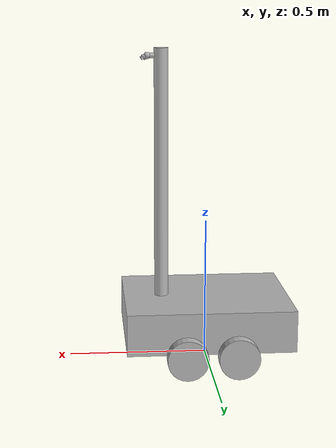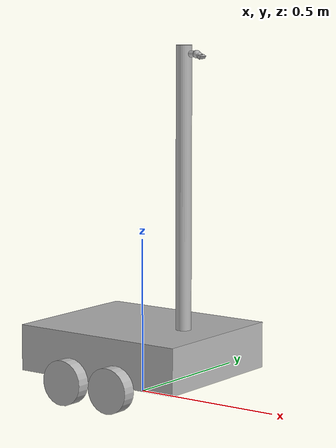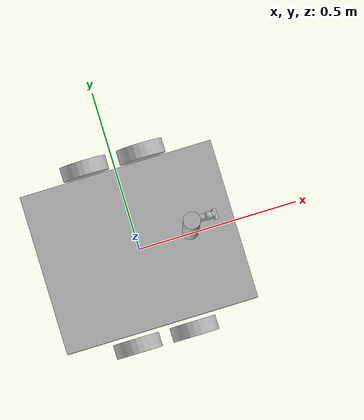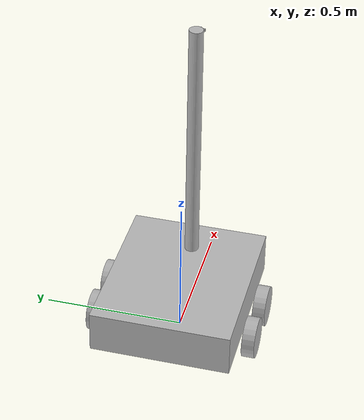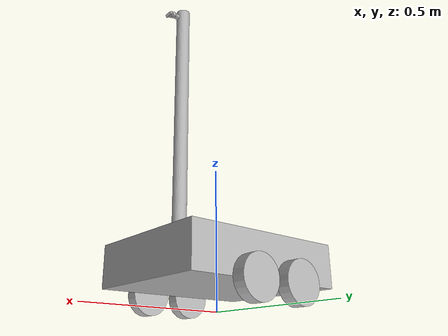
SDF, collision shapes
<?xml version="1.0" ?>
<sdf version="1.5">
<model name="kobra">
    <link name="chassis">
        <!-- Offset the base by slightly more then half the height of the wheel -->
        <pose>0 0 0.15 0 0 0</pose>
        <inertial>
            <mass>9.5</mass>
            <inertia>
                <ixx>0.21179</ixx>
                <ixy>0.0</ixy>
                <ixz>0.0</ixz>
                <iyy>0.3</iyy>
                <iyz>0.0</iyz>
                <izz>0.478978</izz>
            </inertia>
        </inertial>
        <collision name="collision">
            <geometry>
            <box>
                <!-- Dimensions provided by Nuzoo Robotics -->
                <size>0.6 0.495 0.15</size>
            </box>
            </geometry>
        </collision>
        <visual name="visual">
            <geometry>
            <mesh>
                    <uri>model://kobra/meshes/chassis.dae</uri>
            </mesh>
            </geometry>
        </visual>
    </link>

    <link name="vertical_arm">
        <!-- Offset the arm by half the height of the wheel +
        + the height of the chassis -->
        <pose>0.1625 0 0.675 0 0 0</pose>
        <inertial>
            <mass>0.5</mass>
            <inertia>
                <ixx>0.033828</ixx>
                <ixy>0.0</ixy>
                <ixz>0.0</ixz>
                <iyy>0.033828</iyy>
                <iyz>0.0</iyz>
                <izz>0.000156</izz>
            </inertia>
        </inertial>
        <collision name="collision">
            <geometry>
            <cylinder>
                <radius>.025</radius>
                <length>.9</length>
            </cylinder>
            </geometry>
        </collision>
        <visual name="visual">
            <geometry>
            <cylinder>
                <radius>.025</radius>
                <length>.9</length>
            </cylinder>
            </geometry>
        </visual>
    </link>

    <link name="arm_extension">
        <pose>0.1875 0 1.0975 0 -1.5707 0</pose>
        <inertial>
            <mass>.1</mass>
            <inertia>
                <ixx>0.0083125</ixx>
                <ixy>0.0</ixy>
                <ixz>0.0</ixz>
                <iyy>0.0083125</iyy>
                <iyz>0.0</iyz>
                <izz>0.078125</izz>
            </inertia>
        </inertial>
        <collision name="collision">
            <geometry>
            <cylinder>
                <radius>.01</radius>
                <length>.03</length>
            </cylinder>
            </geometry>
        </collision>
        <visual name="visual">
            <geometry>
            <cylinder>
                <radius>.01</radius>
                <length>.03</length>
            </cylinder>
            </geometry>
        </visual>
    </link>

    <link name="camera_junction_sphere">
        <pose>0.211 0 1.0975 0 0 0</pose>
        <inertial>
            <mass>.1</mass>
            <!-- matrix of inertias of a solid sphere with mass m and radius r:
                |(2*m*r^2)/5		0		0    |
                |	0	(2*m*r^2)/5		0    |
                |	0		0	(2*m*r^2)/5|
            -->
            <inertia>
                <ixx>0.00000625</ixx>
                <ixy>0</ixy>
                <ixz>0.0</ixz>
                <iyy>0.00000625</iyy>
                <iyz>0.0</iyz>
                <izz>0.00000625</izz>
            </inertia>
        </inertial>
        <collision name="collision">
            <geometry>
            <sphere>
                <radius>.0125</radius>
            </sphere>
            </geometry>
        </collision>
        <visual name="visual">
            <geometry>
            <sphere>
                <radius>.0125</radius>
            </sphere>
            </geometry>
        </visual>
    </link>

    <link name="camera_support">
        <pose>0.222 0 1.0925 0 2.0943 0</pose>
        <inertial>
            <mass>.1</mass>
            <inertia>
                <ixx>0.0083125</ixx>
                <ixy>0.0</ixy>
                <ixz>0.0</ixz>
                <iyy>0.0083125</iyy>
                <iyz>0.0</iyz>
                <izz>0.078125</izz>
            </inertia>
        </inertial>
        <collision name="collision">
        <geometry>
            <cylinder>
                <radius>.01</radius>
                <length>.01</length>
            </cylinder>
        </geometry>
      </collision>
      <visual name="visual">
            <geometry>
            <cylinder>
                <radius>.01</radius>
                <length>.01</length>
            </cylinder>
            </geometry>
        </visual>
    </link>

    <link name="right_front_wheel">
        <!-- x y z roll pitch yaw
            roll 90°=1.5707 rad
        -->
        <pose>0.09 -0.2825 0.0725 0 1.5707 1.5707</pose>
        <inertial>
            <mass>1</mass>
            <inertia>
                <ixx>0.001482813</ixx>
                <ixy>0.0</ixy>
                <ixz>0.0</ixz>
                <iyy>0.001482813</iyy>
                <iyz>0.0</iyz>
                <izz>0.002628125</izz>
            </inertia>
        </inertial>
        <collision name="collision">
            <geometry>
            <cylinder>
                <radius>0.0725</radius>
                <length>0.045</length>
            </cylinder>
            </geometry>
            <surface>
                <friction>
                <ode>
                    <mu>0.25</mu>
                    <mu2>0.25</mu2>
                    <slip1>0.0</slip1>
                    <slip2>0.0</slip2>
                </ode>
                </friction>
            </surface>
        </collision>
        <visual name="visual">
            <pose>0.013 0.000 -0.014 0 0 0</pose>
            <geometry>
                <mesh>
                    <uri>model://kobra/meshes/right_wheel.dae</uri>
                </mesh>
            </geometry>
        </visual>
    </link>

    <link name="left_front_wheel">
        <pose>0.09 0.2825 0.0725 0 1.5707 1.5707</pose>
        <inertial>
            <mass>1</mass>
            <inertia>
                <ixx>0.001482813</ixx>
                <ixy>0.0</ixy>
                <ixz>0.0</ixz>
                <iyy>0.001482813</iyy>
                <iyz>0.0</iyz>
                <izz>0.002628125</izz>
            </inertia>
        </inertial>
        <collision name="collision">
            <geometry>
            <cylinder>
                <radius>0.0725</radius>
                <length>0.045</length>
            </cylinder>
            </geometry>
            <surface>
                <friction>
                <ode>
                    <mu>0.25</mu>
                    <mu2>0.25</mu2>
                    <slip1>0.0</slip1>
                    <slip2>0.0</slip2>
                </ode>
                </friction>
            </surface>
        </collision>
        <visual name="visual">
            <pose>0.013 0.000 0.014 0 0 0</pose>
            <geometry>
            <mesh>
                <uri>model://kobra/meshes/left_wheel.dae</uri>
            </mesh>
            </geometry>
        </visual>
    </link>

    <link name="right_rear_wheel">
        <pose>-0.09 -0.2825 0.0725 0 1.5707 1.5707</pose>
        <inertial>
            <mass>1</mass>
            <inertia>
                <ixx>0.001482813</ixx>
                <ixy>0.0</ixy>
                <ixz>0.0</ixz>
                <iyy>0.001482813</iyy>
                <iyz>0.0</iyz>
                <izz>0.002628125</izz>
            </inertia>
        </inertial>
        <collision name="collision">
            <geometry>
            <cylinder>
                <radius>0.0725</radius>
                <length>0.045</length>
            </cylinder>
            </geometry>
            <surface>
                <friction>
                <ode>
                    <mu>0.25</mu>
                    <mu2>0.25</mu2>
                    <slip1>0.0</slip1>
                    <slip2>0.0</slip2>
                </ode>
                </friction>
            </surface>
        </collision>
        <visual name="visual">
            <pose>0.013 0.000 -0.014 0 0 0</pose>
            <geometry>
                <mesh>
                    <uri>model://kobra/meshes/right_wheel.dae</uri>
                </mesh>
            </geometry>
        </visual>
    </link>

    <link name="left_rear_wheel">
        <pose>-0.09 0.2825 0.0725 0 1.5707 1.5707</pose>
        <inertial>
            <mass>1</mass>
            <inertia>
                <ixx>0.001482813</ixx>
                <ixy>0.0</ixy>
                <ixz>0.0</ixz>
                <iyy>0.001482813</iyy>
                <iyz>0.0</iyz>
                <izz>0.002628125</izz>
            </inertia>
        </inertial>
        <collision name="collision">
            <geometry>
            <cylinder>
                <radius>0.0725</radius>
                <length>0.045</length>
            </cylinder>
            </geometry>
            <surface>
                <friction>
                <ode>
                    <mu>0.25</mu>
                    <mu2>0.25</mu2>
                    <slip1>0.0</slip1>
                    <slip2>0.0</slip2>
                </ode>
                </friction>
            </surface>
        </collision>
        <visual name="visual">
            <pose>0.013 0.000 0.014 0 0 0</pose>
            <geometry>
                <mesh>
                    <uri>model://kobra/meshes/left_wheel.dae</uri>
                </mesh>
            </geometry>
        </visual>
    </link>

        <!--                    Joints                       -->

    <joint type="revolute" name="right_front_wheel_joint">
        <pose>0 0 0 0 0 0</pose>
        <child>right_front_wheel</child>
        <parent>chassis</parent>
        <axis>
            <xyz>0 0 1</xyz>
        </axis>
    </joint>

    <joint type="revolute" name="right_rear_wheel_joint">
        <pose>0 0 0 0 0 0</pose>
        <child>right_rear_wheel</child>
        <parent>chassis</parent>
        <axis>
            <xyz>0 0 1</xyz>
        </axis>
    </joint>

    <joint type="revolute" name="left_front_wheel_joint">
        <pose>0 0 0 0 0 0</pose>
        <child>left_front_wheel</child>
        <parent>chassis</parent>
        <axis>
            <xyz>0 0 1</xyz>
        </axis>
    </joint>

    <joint type="revolute" name="left_rear_wheel_joint">
        <pose>0 0 0 0 0 0</pose>
        <child>left_rear_wheel</child>
        <parent>chassis</parent>
        <axis>
            <xyz>0 0 1</xyz>
        </axis>
    </joint>

    <joint type="fixed" name="vertical_arm_joint">
        <pose>0 0 0 0 0 0</pose>
        <child>vertical_arm</child>
        <parent>chassis</parent>
    </joint>

    <joint type="fixed" name="arm_extension_joint">
        <pose>0 0 0 0 0 0</pose>
        <child>arm_extension</child>
        <parent>vertical_arm</parent>
    </joint>

    <joint type="revolute" name="camera_junction_sphere_joint">
        <pose>0 0 0 0 0 0</pose>
        <child>camera_junction_sphere</child>
        <parent>arm_extension</parent>
        <axis>
            <xyz>0 1 0</xyz>
      </axis>
    </joint>

    <joint type="revolute" name="camera_support_joint">
      <pose>0 0 0 0 0 0</pose>
      <child>camera_support</child>
      <parent>camera_junction_sphere</parent>
      <axis>
        <xyz>1 0 0</xyz>
      </axis>
    </joint>

    <!--             Sensors                -->

    <joint name="hokuyo_joint" type="fixed">
        <child>kobra_hokuyo::link</child>
        <parent>chassis</parent>
    </joint>

    <joint name="camera_joint" type="fixed">
        <child>kobra_camera::link</child>
        <parent>camera_support</parent>
    </joint>

    <model name="kobra_hokuyo">
        <pose>0.29 0 0.10 0 0 0</pose>
        <link name="link">
        <inertial>
            <mass>0.1</mass>
        </inertial>
        <visual name="visual">
            <geometry>
            <mesh>
                <uri>model://hokuyo/meshes/hokuyo.dae</uri>
            </mesh>
            </geometry>
        </visual>
        <sensor name="laser" type="ray">
            <pose>0.01 0 0.03 0 -0 0</pose>
            <ray>
            <scan>
                <horizontal>
                <samples>640</samples>
                <resolution>1</resolution>
                <min_angle>-1.5708</min_angle>
                <max_angle>1.5708</max_angle>
                </horizontal>
            </scan>
            <range>
                <min>0.08</min>
                <max>7</max>
                <resolution>0.01</resolution>
            </range>
            </ray>

            <plugin name="laser_controller" filename="libgazebo_ros_laser.so">
                <topicName>/kobra/laser_scan</topicName>
                <frameName>laser_sensor</frameName>
                <updateRate>0.0</updateRate>
            </plugin>

            <always_on>1</always_on>
            <update_rate>30</update_rate>
            <visualize>true</visualize>
        </sensor>
        </link>
    </model>

    <model name="kobra_camera">
        <pose>0.229 0 1.090 0 0.52359 0</pose>
        <link name="link">
            <inertial>
            <mass>0.1</mass>
            <inertia>
                <ixx>0.000166667</ixx>
                <iyy>0.000166667</iyy>
                <izz>0.000166667</izz>
            </inertia>
            </inertial>
            <collision name="collision">
            <geometry>
                <box>
                <size>0.01 0.03 0.01</size>
                </box>
            </geometry>
            </collision>
            <visual name="visual">
            <geometry>
                <box>
                <size>0.01 0.03 0.01</size>
                </box>
            </geometry>
            </visual>
            <sensor name="camera" type="camera">
            <camera>
                <horizontal_fov>1.047</horizontal_fov>
                <image>
                <width>320</width>
                <height>240</height>
                </image>
                <clip>
                <near>0.1</near>
                <far>100</far>
                </clip>
            </camera>
            <always_on>1</always_on>
            <update_rate>30</update_rate>
            <visualize>true</visualize>
            <plugin name="camera_controller" filename="libgazebo_ros_camera.so">
                <alwaysOn>true</alwaysOn>
                <updateRate>0.0</updateRate>
                <cameraName>kobra_camera</cameraName>
                <imageTopicName>kobra/image</imageTopicName>
                <cameraInfoTopicName>kobra/camera_info</cameraInfoTopicName>
                <!-- not known -->
                <hackBaseline>0.1</hackBaseline>
                <distortionK1>0.0</distortionK1>
                <distortionK2>0.0</distortionK2>
                <distortionK3>0.0</distortionK3>
                <distortionT1>0.0</distortionT1>
                <distortionT2>0.0</distortionT2>
            </plugin>
            </sensor>
        </link>
    </model>

    <!--            Plugins             -->

    <plugin name="skid_steer_drive_controller" filename="libsteering_control.so">
        <UpdateRate>100.0</UpdateRate>
        <LeftFrontJoint>left_front_wheel_joint</LeftFrontJoint>
        <RightFrontJoint>right_front_wheel_joint</RightFrontJoint>
        <LeftRearJoint>left_rear_wheel_joint</LeftRearJoint>
        <RightRearJoint>right_rear_wheel_joint</RightRearJoint>
        <WheelSeparation>0.49</WheelSeparation>
        <RobotBaseFrame>base_link</RobotBaseFrame>
        <CmdTopic>kobra/cmd_vel</CmdTopic>
        <OdometryTopic>kobra/odom</OdometryTopic>
    </plugin>

    <plugin name="pan_tilt_camera_controller" filename="libpantilt_camera.so">
        <panJoint>camera_support_joint</panJoint>
        <panVelocity>0.5</panVelocity>
        <tiltJoint>camera_junction_sphere_joint</tiltJoint>
        <tiltVelocity>0.7</tiltVelocity>
        <topicName>/kobra/ptz</topicName>
        <cameraName>kobra_camera</cameraName>
        <panJointRadius>0.01</panJointRadius>
        <tiltJointRadius>0.0125</tiltJointRadius>
    </plugin>

    <plugin name="tf_kobra_broadcaster" filename="libkobra_tf.so">
        <panJoint>camera_support_joint</panJoint>
        <tiltJoint>camera_junction_sphere_joint</tiltJoint>
        <baseFrame>base_link</baseFrame>
        <tiltFrame>tilt_frame</tiltFrame>
        <panFrame>pan_frame</panFrame>
    </plugin>

</model>
</sdf>
